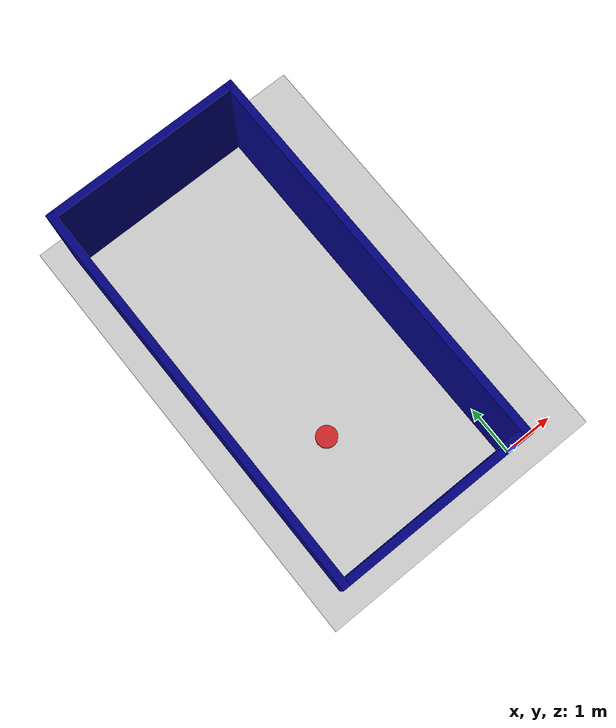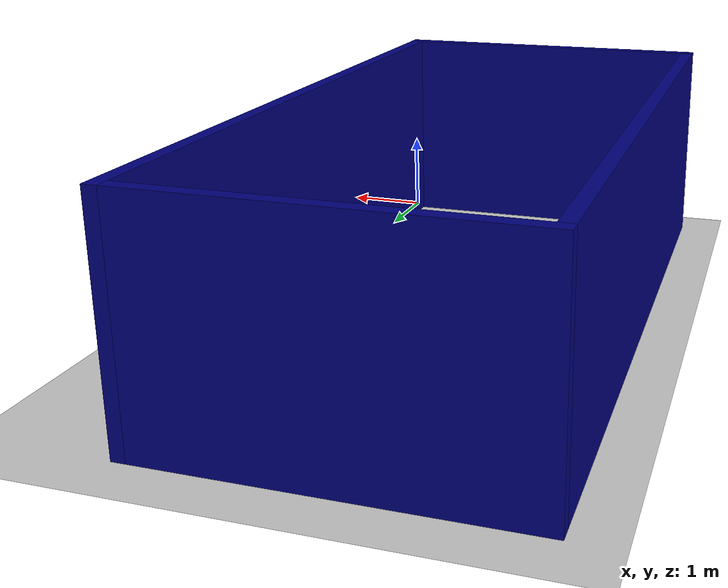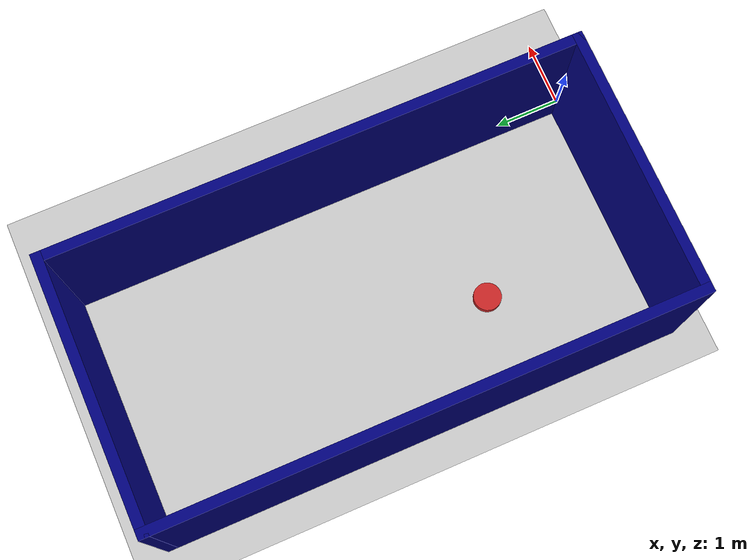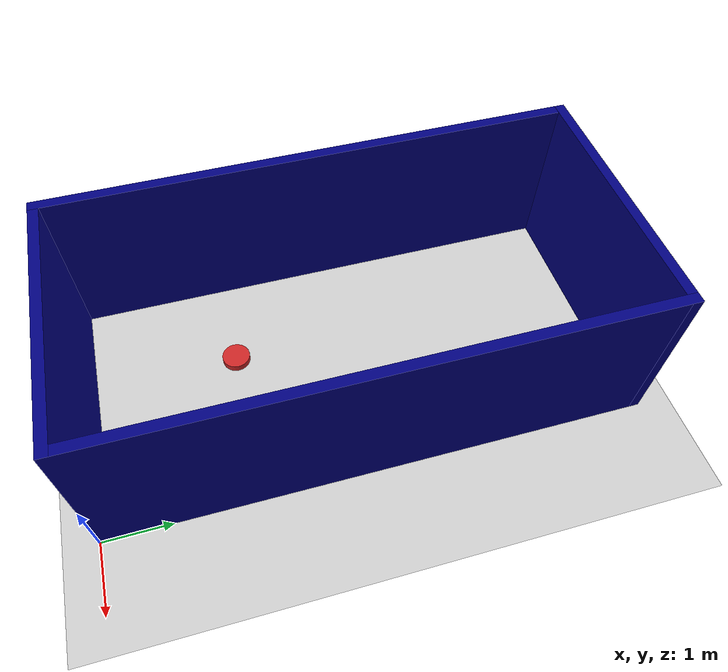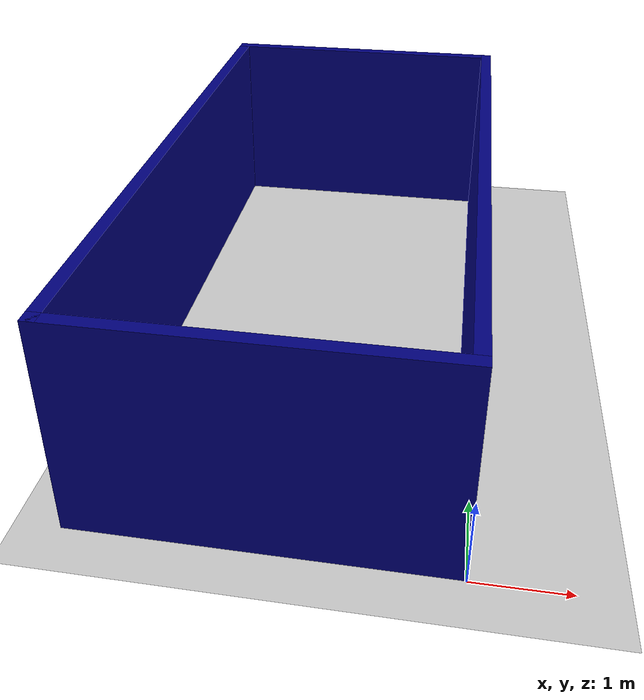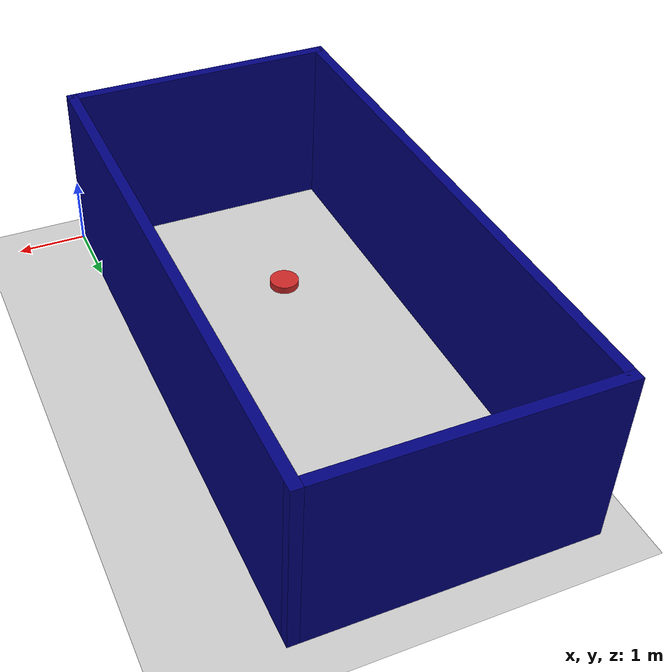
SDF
<sdf version="1.7">
 <world name="default">
  <scene><ambient>0.4 0.4 0.4 1</ambient><background>0.7 0.7 0.7 1</background><shadows>1</shadows></scene>
  <light name="sun" type="directional">
   <pose>0 0 10 0 -0 0</pose>
   <diffuse>0.8 0.8 0.8 1</diffuse>
   <specular>0.2 0.2 0.2 1</specular>
   <attenuation>
    <range>1000</range>
    <constant>0.9</constant>
    <linear>0.01</linear>
    <quadratic>0.001</quadratic>
   </attenuation>
   <direction>-0.5 0.1 -0.9</direction>
   <spot><inner_angle>0</inner_angle><outer_angle>0</outer_angle><falloff>0</falloff></spot>
  </light>
  <model name="ground_plane">
   <static>1</static>
   <link name="link">
    <collision name="collision">
     <geometry><plane><normal>0 0 1</normal><size>100 100</size></plane></geometry>
     <surface>
      <contact><collide_bitmask>65535</collide_bitmask></contact>
      <friction><ode><mu>100</mu><mu2>50</mu2></ode></friction>
     </surface>
    </collision>
    <visual name="visual">
     <cast_shadows>0</cast_shadows>
     <geometry><plane><normal>0 0 1</normal><size>100 100</size></plane></geometry>
     <material>
      <script><uri>file://media/materials/scripts/gazebo.material</uri><name>Gazebo/Grey</name></script>
     </material>
    </visual>
   </link>
  </model>
  <physics type="ode">
   <real_time_update_rate>1000</real_time_update_rate>
   <max_step_size>0.001</max_step_size>
   <real_time_factor>1</real_time_factor>
   <ode>
    <solver>
     <type>quick</type>
     <iters>150</iters>
     <precon_iters>0</precon_iters>
     <sor>1.4</sor>
     <use_dynamic_moi_rescaling>1</use_dynamic_moi_rescaling>
    </solver>
    <constraints>
     <cfm>1e-05</cfm>
     <erp>0.2</erp>
     <contact_max_correcting_vel>2000</contact_max_correcting_vel>
     <contact_surface_layer>0.01</contact_surface_layer>
    </constraints>
   </ode>
  </physics>
  <gravity>0 0 -9.8</gravity>
  <magnetic_field>6e-06 2.3e-05 -4.2e-05</magnetic_field>
  <atmosphere type="adiabatic"/>
  <spherical_coordinates>
   <surface_model>EARTH_WGS84</surface_model>
   <latitude_deg>0</latitude_deg>
   <longitude_deg>0</longitude_deg>
   <elevation>0</elevation>
   <heading_deg>0</heading_deg>
  </spherical_coordinates>
  <model name="unit_cylinder_red">
   <link name="link">
    <inertial>
     <mass>0.0197504</mass>
     <inertia>
      <ixx>0.00024193</ixx>
      <ixy>0</ixy>
      <ixz>0</ixz>
      <iyy>0.00024193</iyy>
      <iyz>0</iyz>
      <izz>0.00044416</izz>
     </inertia>
    </inertial>
    <pose>-0.113318 -0.674322 -0.436004 0 -0 0</pose>
    <visual name="visual">
     <geometry><cylinder><radius>0.212079</radius><length>0.109812</length></cylinder></geometry>
     <material>
      <script><name>Gazebo/Red</name><uri>file://media/materials/scripts/gazebo.material</uri></script>
      <shader type="pixel"><normal_map>__default__</normal_map></shader>
      <ambient>1 0 0 1</ambient>
      <diffuse>0.7 0.7 0.7 1</diffuse>
      <specular>0.01 0.01 0.01 1</specular>
      <emissive>0 0 0 1</emissive>
     </material>
    </visual>
    <collision name="collision">
     <geometry><cylinder><radius>0.212079</radius><length>0.109812</length></cylinder></geometry>
     <surface>
      <friction>
       <ode><mu>0</mu><mu2>0</mu2><fdir1>0 0 0</fdir1><slip1>0</slip1><slip2>0</slip2></ode>
       <torsional>
        <coefficient>1</coefficient>
        <patch_radius>0</patch_radius>
        <surface_radius>0</surface_radius>
        <use_patch_radius>1</use_patch_radius>
        <ode><slip>0</slip></ode>
       </torsional>
      </friction>
      <bounce><restitution_coefficient>0.5</restitution_coefficient><threshold>10000</threshold></bounce>
      <contact>
       <collide_without_contact>0</collide_without_contact>
       <collide_without_contact_bitmask>1</collide_without_contact_bitmask>
       <collide_bitmask>1</collide_bitmask>
       <ode>
        <soft_cfm>0</soft_cfm>
        <soft_erp>0.2</soft_erp>
        <kp>1e+13</kp>
        <kd>1</kd>
        <max_vel>10</max_vel>
        <min_depth>0.001</min_depth>
       </ode>
       <bullet>
        <split_impulse>1</split_impulse>
        <split_impulse_penetration_threshold>-0.01</split_impulse_penetration_threshold>
        <soft_cfm>0</soft_cfm>
        <soft_erp>0.2</soft_erp>
        <kp>1e+13</kp>
        <kd>1</kd>
       </bullet>
      </contact>
     </surface>
    </collision>
   </link>
   <static>0</static>
   <pose>-2.31567 2.98281 0.490892 -1.7e-05 -1.7e-05 0</pose>
  </model>
  <model name="blue_room">
   <pose>-2.00146 3.84292 0 0 -0 0</pose>
   <link name="Wall_11">
    <collision name="Wall_11_Collision">
     <geometry><box><size>4 0.15 2.5</size></box></geometry>
     <pose>0 0 1.25 0 -0 0</pose>
    </collision>
    <visual name="Wall_11_Visual">
     <pose>0 0 1.25 0 -0 0</pose>
     <geometry><box><size>4 0.15 2.5</size></box></geometry>
     <material>
      <script><uri>file://media/materials/scripts/gazebo.material</uri><name>Gazebo/Grey</name></script>
      <ambient>0 0 0.498039 1</ambient>
     </material>
     <meta><layer>0</layer></meta>
    </visual>
    <pose>-0 -3.76566 0 0 -0 0</pose>
   </link>
   <link name="Wall_12">
    <collision name="Wall_12_Collision">
     <geometry><box><size>8 0.15 2.5</size></box></geometry>
     <pose>0 0 1.25 0 -0 0</pose>
    </collision>
    <visual name="Wall_12_Visual">
     <pose>0 0 1.25 0 -0 0</pose>
     <geometry><box><size>8 0.15 2.5</size></box></geometry>
     <material>
      <script><uri>file://media/materials/scripts/gazebo.material</uri><name>Gazebo/Grey</name></script>
      <ambient>0 0 0.498039 1</ambient>
     </material>
     <meta><layer>0</layer></meta>
    </visual>
    <pose>1.925 0.159344 0 0 -0 1.5708</pose>
   </link>
   <link name="Wall_13">
    <collision name="Wall_13_Collision">
     <geometry><box><size>4 0.15 2.5</size></box></geometry>
     <pose>0 0 1.25 0 -0 0</pose>
    </collision>
    <visual name="Wall_13_Visual">
     <pose>0 0 1.25 0 -0 0</pose>
     <geometry><box><size>4 0.15 2.5</size></box></geometry>
     <material>
      <script><uri>file://media/materials/scripts/gazebo.material</uri><name>Gazebo/Grey</name></script>
      <ambient>0 0 0.498039 1</ambient>
     </material>
     <meta><layer>0</layer></meta>
    </visual>
    <pose>-0 4.08434 0 0 -0 3.14159</pose>
   </link>
   <link name="Wall_14">
    <collision name="Wall_14_Collision">
     <geometry><box><size>8 0.15 2.5</size></box></geometry>
     <pose>0 0 1.25 0 -0 0</pose>
    </collision>
    <visual name="Wall_14_Visual">
     <pose>0 0 1.25 0 -0 0</pose>
     <geometry><box><size>8 0.15 2.5</size></box></geometry>
     <material>
      <script><uri>file://media/materials/scripts/gazebo.material</uri><name>Gazebo/Grey</name></script>
      <ambient>0 0 0.498039 1</ambient>
     </material>
     <meta><layer>0</layer></meta>
    </visual>
    <pose>-1.925 0.159344 0 0 -0 -1.5708</pose>
   </link>
   <static>1</static>
  </model>
 </world>
</sdf>
